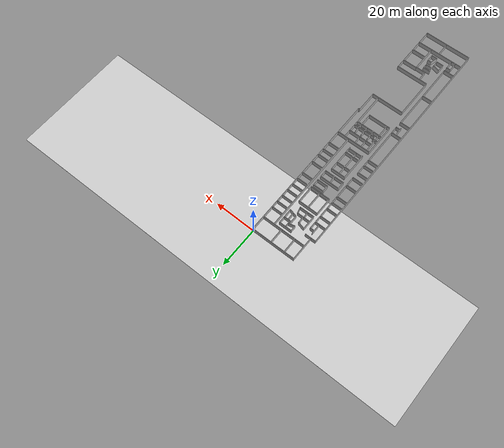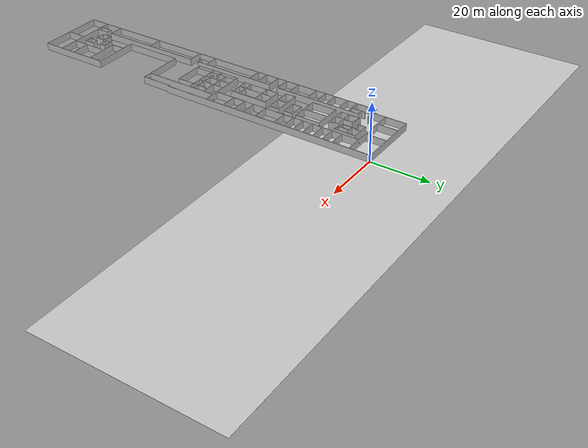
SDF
<?xml version="1.0"?>
  <sdf version="1.8">
    <world name="default">
      <scene>
        <shadows>0</shadows>
      </scene>

      <gui fullscreen='0'>
        <camera name='user_camera'>
          <pose frame=''>0.0 0.0 80.0 0 1.5708 0</pose>
          <view_controller>orbit</view_controller>
          <projection_type>perspective</projection_type>
        </camera>
      </gui>

      <physics name="1ms" type="ignore">
        <max_step_size>0.001</max_step_size>
        <real_time_factor>0.0</real_time_factor>
      </physics>

      <plugin filename="gz-sim-physics-system" name="gz::sim::systems::Physics"/>
      <plugin filename="gz-sim-user-commands-system" name="gz::sim::systems::UserCommands"/>
      <plugin filename="gz-sim-scene-broadcaster-system" name="gz::sim::systems::SceneBroadcaster"/>
      <plugin filename="gz-sim-sensors-system" name="gz::sim::systems::Sensors">
        <render_engine>ogre2</render_engine>
      </plugin>
      <plugin filename="gz-sim-imu-system" name="gz::sim::systems::Imu"/>

      <model name="ground_plane">
        <static>true</static>
        <pose>7.65 -0.6 -0.005 0 0 0</pose>
        <link name="link">
          <collision name="collision">
            <geometry>
              <plane>
                <normal>0 0 1</normal>
                <size>200 60</size>
              </plane>
            </geometry>
          </collision>
          <visual name="visual">
            <geometry>
              <box>
                <size>200 60 0.01</size>
              </box>
            </geometry>
            <material>
              <ambient>0.8 0.8 0.8 1</ambient>
              <diffuse>0.8 0.8 0.8 1</diffuse>
              <specular>0.1 0.1 0.1 1</specular>
            </material>
          </visual>
        </link>
      </model>

      <include>
        <uri>https://fuel.gazebosim.org/1.0/OpenRobotics/models/Sun</uri>
      </include>

      <model name="campus_model">
        <static>1</static>
        <include>
          <uri>model://campus_model</uri>
        </include>
      </model>

    </world>
  </sdf>

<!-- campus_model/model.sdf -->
<sdf version="1.8">
  <model name="campus_model">
    <static>true</static>

    <link name="walls">
      <visual name="visual">
        <geometry>
          <mesh>
            <uri>model://campus_model/meshes/walls_without_floor.obj</uri>
            <scale>1 1 1</scale>
          </mesh>
        </geometry>
      </visual>

      <collision name="collision">
        <geometry>
          <mesh>
            <uri>model://campus_model/meshes/walls_without_floor.obj</uri>
            <scale>1 1 1</scale>
          </mesh>
        </geometry>
      </collision>
    </link>
  </model>
</sdf>
